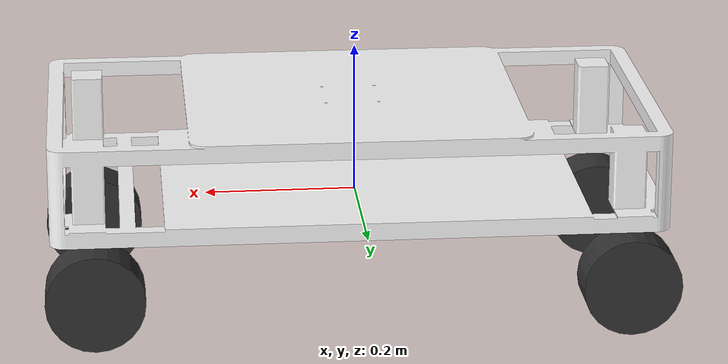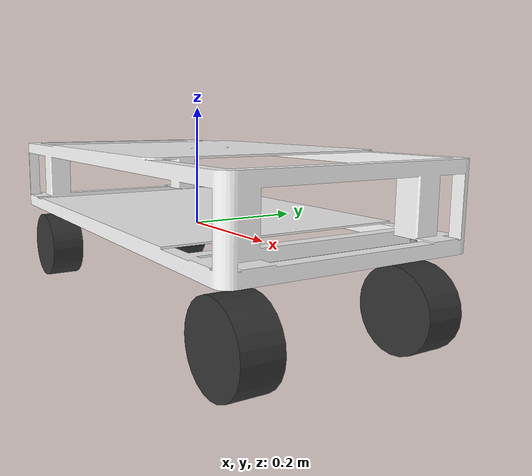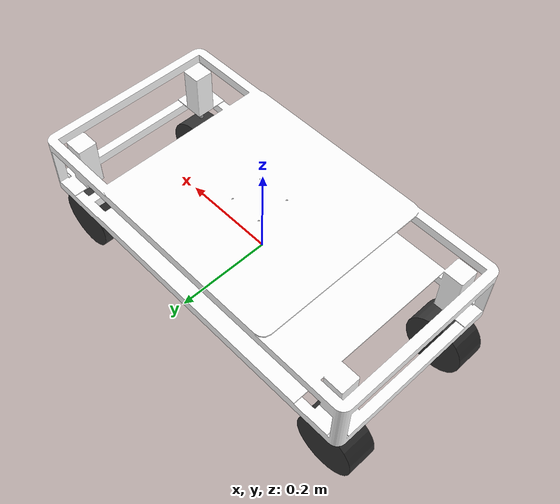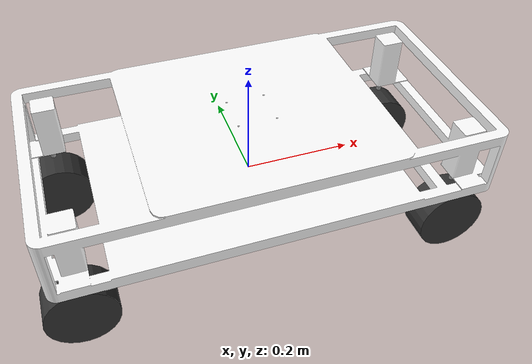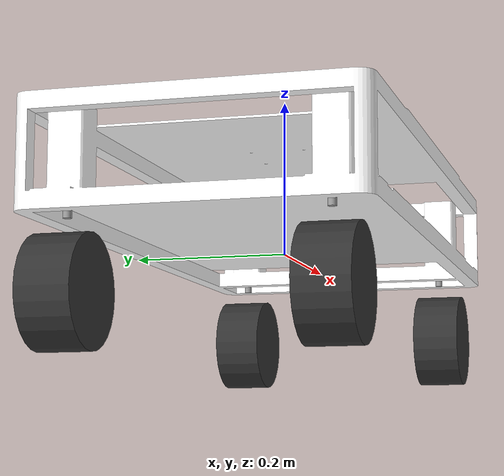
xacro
<?xml version="1.0"?>
<robot xmlns:xacro="http://www.ros.org/wiki/xacro">

    <xacro:include filename="inertial_macros.xacro"/>

    <xacro:property name="pkg_path" value="$(find cbf_sim)"/>

    <material name="white">
        <color rgba="1 1 1 1" />
    </material>

    <material name="orange">
        <color rgba="1 0.3 0.1 1"/>
    </material>

    <material name="blue">
        <color rgba="0.2 0.2 1 1"/>
    </material>

    <material name="gray">
        <color rgba="0.6 0.6 0.6 1"/>
    </material>

    <material name="darkgray">
        <color rgba="0.3 0.3 0.3 1"/>
    </material>

    <material name="red">
        <color rgba="1 0 0 1"/>
    </material>

    <material name="purple">
        <color rgba="0.6 0 0.8 1"/>
    </material>

    <material name="yellow">
        <color rgba="1 1 0 1"/>
    </material>

    <material name="black">
        <color rgba="0.2 0.2 0.2 1"/>
    </material>

    <!-- BASE_FOOTPRINT LINK -->

    <link name="base_footprint">

    </link>

    <!-- BASE_LINK -->

    <link name="base_link">

    </link>

    <joint name="base_link_joint" type="fixed">
        <parent link="base_footprint"/>
        <child link="base_link"/>
        <origin xyz="0 0 0" rpy="0 0 0"/>
    </joint>

    <!-- CHASSIS -->

    <joint name="chassis_joint" type="fixed">
        <parent link="base_link"/>
        <child link="chassis_link"/>
        <origin xyz="-0.40 0 0"/>
    </joint>

    <link name="chassis_link">
        <visual>
            <origin xyz="0 -0.2 0" rpy="1.57 0 1.57"/>
            <geometry>
                <mesh filename="file://${pkg_path}/meshes/Body.dae" scale="0.001 0.001 0.001"/>
            </geometry>
            <material name='white'/>
        </visual>
        <collision>
            <origin xyz="0 -0.2 0" rpy="1.57 0 1.57"/>
            <geometry>
                <mesh filename="file://${pkg_path}/meshes/Body.dae" scale="0.001 0.001 0.001"/>
            </geometry>
        </collision>
        <xacro:inertial_box mass="5.0" x="0.8" y="0.4" z='0.13'>
            <origin xyz="0.40 0 0.065" rpy="0 0 0"/>
        </xacro:inertial_box>
    </link>

    <gazebo reference="chassis_link">
        <material>Gazebo/White</material>
    </gazebo>

    <!-- FRONT_LEFT_WHEEL -->

    <joint name="front_left_wheel_joint" type="continuous">
        <parent link="front_left_steer_link"/>
        <child link="front_left_wheel_link"/>
        <origin xyz="0 0 -0.0775" rpy="-${pi/2} 0 0"/>
        <axis xyz="0 0 1"/>
    </joint>

    <link name="front_left_wheel_link">
        <visual>
            <origin xyz="0 0 0"/>
            <geometry>
                <cylinder radius="0.065" length="0.0628"/>
            </geometry>
            <material name='black'/>
        </visual>
        <collision>
            <geometry>
                <cylinder radius="0.065" length="0.0628"/>
            </geometry>
        </collision>
        <xacro:inertial_cylinder mass="2.0" length="0.0628" radius="0.065">
            <origin xyz="0 0 0" rpy="0 0 0"/>
        </xacro:inertial_cylinder>
    </link>

    <gazebo reference="front_left_wheel_link">
        <material>Gazebo/Gray</material>
        <mu1 value="200.0"/>
        <mu2 value="100.0"/>
        <kp>450000.0</kp>
        <kd>1.0</kd>
    </gazebo>

    <!-- FRONT_RIGHT_WHEEL -->

    <joint name="front_right_wheel_joint" type="continuous">
        <parent link="front_right_steer_link"/>
        <child link="front_right_wheel_link"/>
        <origin xyz="0 0 -0.0775" rpy="${pi/2} 0 0"/>
        <axis xyz="0 0 -1"/>
    </joint>

    <link name="front_right_wheel_link">
        <visual>
            <origin xyz="0 0 0"/>
            <geometry>
                <cylinder radius="0.065" length="0.0628"/>
            </geometry>
            <material name='black'/>
        </visual>
        <collision>
            <geometry>
                <cylinder radius="0.065" length="0.0628"/>
            </geometry>
        </collision>
        <xacro:inertial_cylinder mass="2.0" length="0.0628" radius="0.065">
            <origin xyz="0 0 0" rpy="0 0 0"/>
        </xacro:inertial_cylinder>
    </link>

    <gazebo reference="front_right_wheel_link">
        <material>Gazebo/Gray</material>
        <mu1 value="200.0"/>
        <mu2 value="100.0"/>
        <kp>450000.0</kp>
        <kd>1.0</kd>
    </gazebo>

    <!-- REAR_LEFT_WHEEL -->

    <joint name="rear_left_wheel_joint" type="continuous">
        <parent link="rear_left_steer_link"/>
        <child link="rear_left_wheel_link"/>
        <origin xyz="0 0 -0.0775" rpy="-${pi/2} 0 0"/>
        <axis xyz="0 0 1"/>
    </joint>

    <link name="rear_left_wheel_link">
        <visual>
            <origin xyz="0 0 0"/>
            <geometry>
                <cylinder radius="0.065" length="0.0628"/>
            </geometry>
            <material name='black'/>
        </visual>
        <collision>
            <geometry>
                <cylinder radius="0.065" length="0.0628"/>
            </geometry>
        </collision>
        <xacro:inertial_cylinder mass="2.0" length="0.0628" radius="0.065">
            <origin xyz="0 0 0" rpy="0 0 0"/>
        </xacro:inertial_cylinder>
    </link>

    <gazebo reference="rear_left_wheel_link">
        <material>Gazebo/Gray</material>
        <mu1 value="200.0"/>
        <mu2 value="100.0"/>
        <kp>450000.0</kp>
        <kd>1.0</kd>
    </gazebo>

    <!-- REAR_RIGHT_WHEEL -->

    <joint name="rear_right_wheel_joint" type="continuous">
        <parent link="rear_right_steer_link"/>
        <child link="rear_right_wheel_link"/>
        <origin xyz="0 0 -0.0775" rpy="${pi/2} 0 0"/>
        <axis xyz="0 0 -1"/>
    </joint>

    <link name="rear_right_wheel_link">
        <visual>
            <origin xyz="0 0 0"/>
            <geometry>
                <cylinder radius="0.065" length="0.0628"/>
            </geometry>
            <material name='black'/>
        </visual>
        <collision>
            <geometry>
                <cylinder radius="0.065" length="0.0628"/>
            </geometry>
        </collision>
        <xacro:inertial_cylinder mass="2.0" length="0.0628" radius="0.065">
            <origin xyz="0 0 0" rpy="0 0 0"/>
        </xacro:inertial_cylinder>
    </link>

    <gazebo reference="rear_right_wheel_link">
        <material>Gazebo/Gray</material>
        <mu1 value="200.0"/>
        <mu2 value="100.0"/>
        <kp>450000.0</kp>
        <kd>1.0</kd>
    </gazebo>

    <!-- FRONT_LEFT_STEER -->

    <joint name="front_left_steer_joint" type="continuous">
        <parent link="base_link"/>
        <child link="front_left_steer_link"/>
        <origin xyz="0.35 0.151 -0.0075"/>
        <axis xyz="0 0 1"/>
    </joint>

    <link name="front_left_steer_link">
        <visual>
            <origin xyz="-0.004 -0.004 0.004"/>
            <geometry>
                <mesh filename="file://${pkg_path}/meshes/Stepmotor_Shaft.dae" scale="0.001 0.001 0.001"/>
            </geometry>
            <material name='gray'/>
        </visual>
        <collision>
            <origin xyz="-0.004 -0.004 0.004"/>
            <geometry>
                <mesh filename="file://${pkg_path}/meshes/Stepmotor_Shaft.dae" scale="0.001 0.001 0.001"/>
            </geometry>
        </collision>
        <xacro:inertial_cylinder mass="0.5" length="0.015" radius="0.02">
            <origin xyz="0 0 0" rpy="0 0 0"/>
        </xacro:inertial_cylinder>
    </link>

    <gazebo reference="front_left_steer_link">
        <material>Gazebo/Gray</material>
        <mu1 value="0.5"/>
        <mu2 value="0.5"/>
    </gazebo>

    <!-- FRONT_RIGHT_STEER -->

    <joint name="front_right_steer_joint" type="continuous">
        <parent link="base_link"/>
        <child link="front_right_steer_link"/>
        <origin xyz="0.35 -0.148 -0.0075"/>
        <axis xyz="0 0 1"/>
    </joint>

    <link name="front_right_steer_link">
        <visual>
            <origin xyz="-0.004 -0.002 0.004"/>
            <geometry>
                <mesh filename="file://${pkg_path}/meshes/Stepmotor_Shaft.dae" scale="0.001 0.001 0.001"/>
            </geometry>
            <material name='gray'/>
        </visual>
        <collision>
            <origin xyz="-0.004 -0.002 0.004"/>
            <geometry>
                <mesh filename="file://${pkg_path}/meshes/Stepmotor_Shaft.dae" scale="0.001 0.001 0.001"/>
            </geometry>
        </collision>
        <xacro:inertial_cylinder mass="0.5" length="0.015" radius="0.02">
            <origin xyz="0 0 0" rpy="0 0 0"/>
        </xacro:inertial_cylinder>
    </link>

    <gazebo reference="front_right_steer_link">
        <material>Gazebo/Gray</material>
        <mu1 value="0.5"/>
        <mu2 value="0.5"/>
    </gazebo>

    <!-- REAR_LEFT_STEER -->

    <joint name="rear_left_steer_joint" type="continuous">
        <parent link="base_link"/>
        <child link="rear_left_steer_link"/>
        <origin xyz="-0.35 0.152 -0.0075"/>
        <axis xyz="0 0 1"/>
    </joint>

    <link name="rear_left_steer_link">
        <visual>
            <origin xyz="-0.002 -0.004 0.004"/>
            <geometry>
                <mesh filename="file://${pkg_path}/meshes/Stepmotor_Shaft.dae" scale="0.001 0.001 0.001"/>
            </geometry>
            <material name='gray'/>
        </visual>
        <collision>
            <origin xyz="-0.002 -0.004 0.004"/>
            <geometry>
                <mesh filename="file://${pkg_path}/meshes/Stepmotor_Shaft.dae" scale="0.001 0.001 0.001"/>
            </geometry>
        </collision>
        <xacro:inertial_cylinder mass="0.5" length="0.015" radius="0.02">
            <origin xyz="0 0 0" rpy="0 0 0"/>
        </xacro:inertial_cylinder>
    </link>

    <gazebo reference="rear_left_steer_link">
        <material>Gazebo/Gray</material>
        <mu1 value="0.5"/>
        <mu2 value="0.5"/>
    </gazebo>

    <!-- REAR_RIGHT_STEER -->

    <joint name="rear_right_steer_joint" type="continuous">
        <parent link="base_link"/>
        <child link="rear_right_steer_link"/>
        <origin xyz="-0.35 -0.147 -0.0075"/>
        <axis xyz="0 0 1"/>
    </joint>

    <link name="rear_right_steer_link">
        <visual>
            <origin xyz="-0.002 -0.002 0.004"/>
            <geometry>
                <mesh filename="file://${pkg_path}/meshes/Stepmotor_Shaft.dae" scale="0.001 0.001 0.001"/>
            </geometry>
            <material name='gray'/>
        </visual>
        <collision>
            <origin xyz="-0.002 -0.002 0.004"/>
            <geometry>
                <mesh filename="file://${pkg_path}/meshes/Stepmotor_Shaft.dae" scale="0.001 0.001 0.001"/>
            </geometry>
        </collision>
        <xacro:inertial_cylinder mass="0.5" length="0.015" radius="0.02">
            <origin xyz="0 0 0" rpy="0 0 0"/>
        </xacro:inertial_cylinder>
    </link>

    <gazebo reference="rear_right_steer_link">
        <material>Gazebo/Gray</material>
        <mu1 value="0.5"/>
        <mu2 value="0.5"/>
    </gazebo>

</robot>
